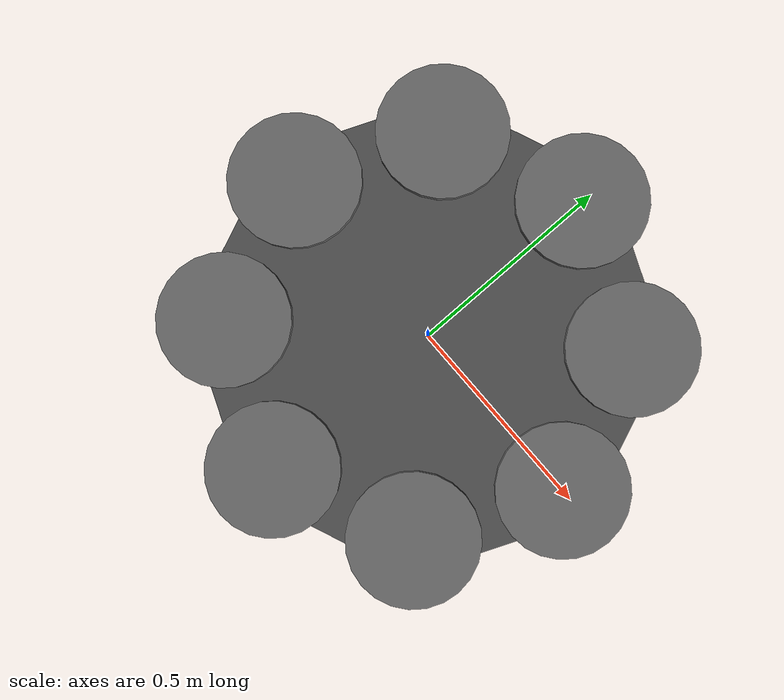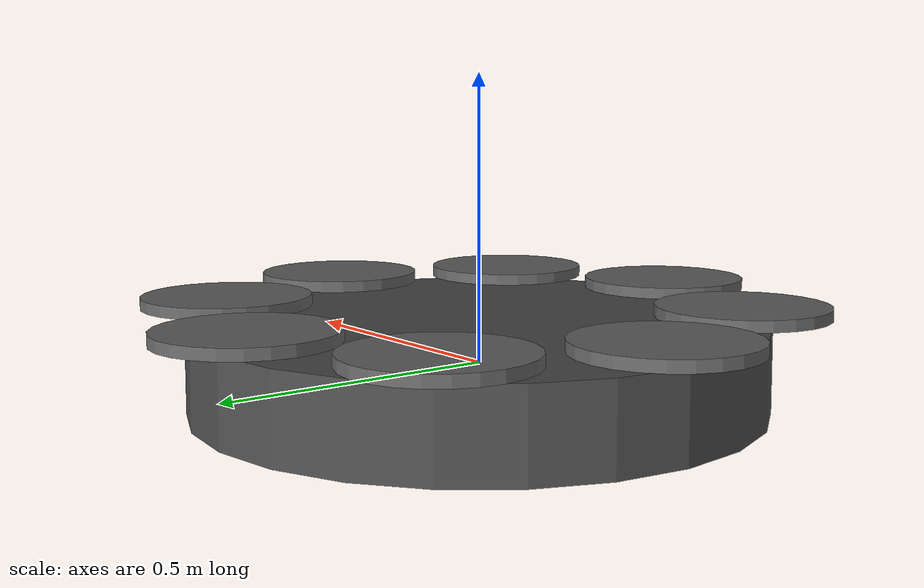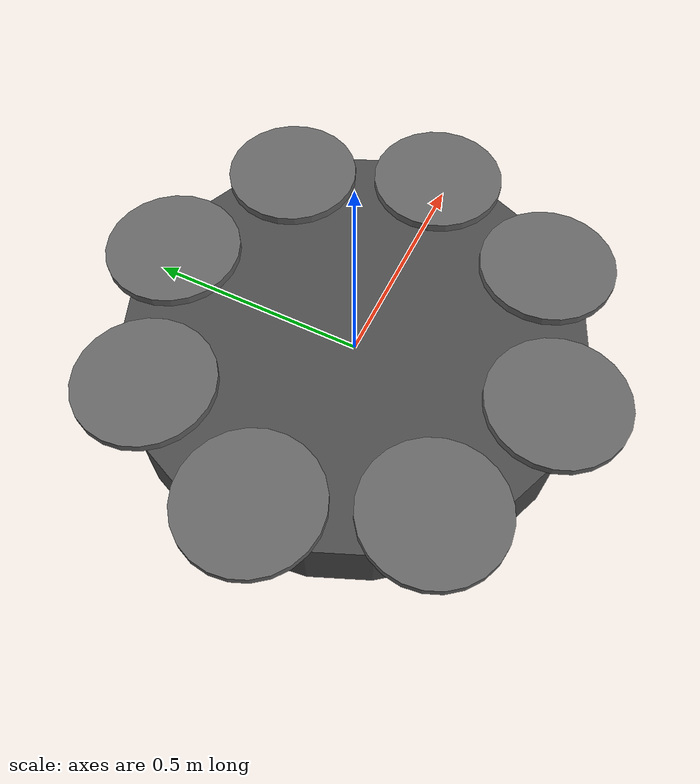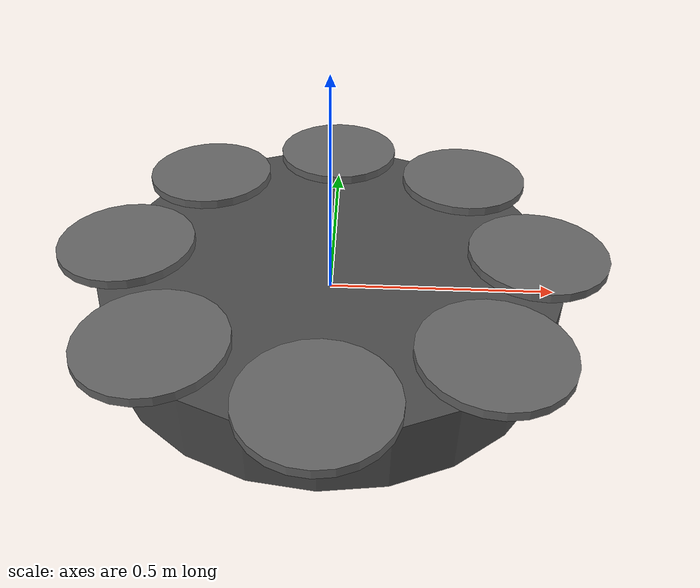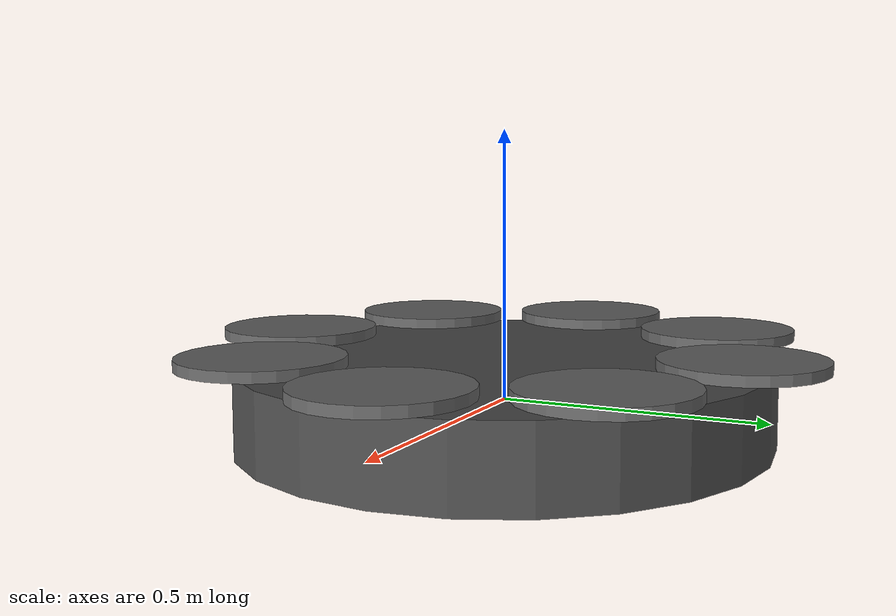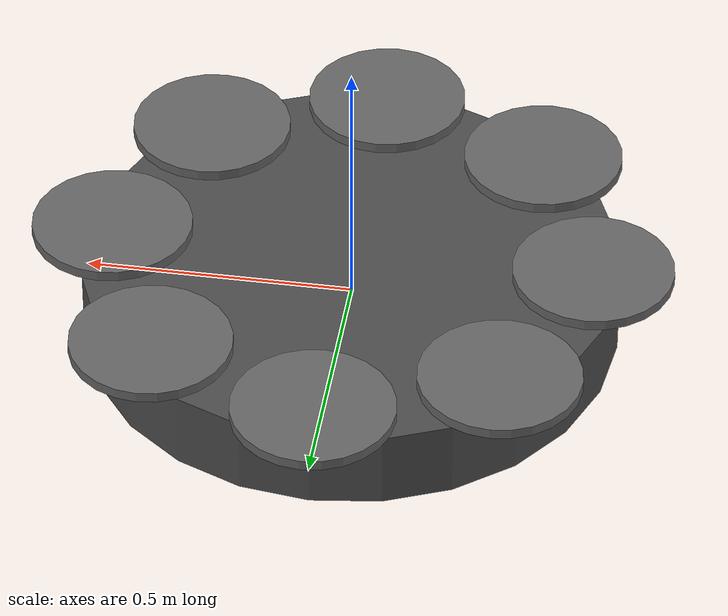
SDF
<?xml version="1.0"?>
<sdf version="1.9">
  <model name="dronehunter_f700">
    <pose>0 0 0 0 0 0</pose>

    <!-- Velocity-controlled body, gz-sim-velocity-control-system applies cmd_vel -->
    <plugin filename="gz-sim-velocity-control-system" name="gz::sim::systems::VelocityControl"/>

    <!-- 3D odometry publisher with explicit dimensions=3 -->
    <plugin filename="gz-sim-odometry-publisher-system"
            name="gz::sim::systems::OdometryPublisher">
      <odom_publish_frequency>50</odom_publish_frequency>
      <dimensions>3</dimensions>
    </plugin>

    <link name="body">
      <inertial>
        <mass>18.0</mass>
        <!-- Disc shape: r=0.5, h=0.15, m=18:
             ixx = iyy = (1/4)·m·r² + (1/12)·m·h² = 1.16
             izz = (1/2)·m·r² = 2.25 -->
        <inertia>
          <ixx>1.16</ixx><iyy>1.16</iyy><izz>2.25</izz>
          <ixy>0.0</ixy><ixz>0.0</ixz><iyz>0.0</iyz>
        </inertia>
      </inertial>
      <collision name="body_col">
        <geometry><cylinder><radius>0.5</radius><length>0.15</length></cylinder></geometry>
      </collision>
      <visual name="body_vis">
        <geometry><cylinder><radius>0.5</radius><length>0.15</length></cylinder></geometry>
        <material><ambient>0.2 0.2 0.2 1</ambient><diffuse>0.3 0.3 0.3 1</diffuse></material>
      </visual>
      <!-- 8 rotor stubs at 45° intervals, cosmetic (no joints, no animation) -->
      <visual name="rotor_e">
        <pose>0.45 0 0.1 0 0 0</pose>
        <geometry><cylinder><radius>0.15</radius><length>0.02</length></cylinder></geometry>
        <material><diffuse>0.4 0.4 0.4 1</diffuse></material>
      </visual>
      <visual name="rotor_ne">
        <pose>0.318 0.318 0.1 0 0 0</pose>
        <geometry><cylinder><radius>0.15</radius><length>0.02</length></cylinder></geometry>
        <material><diffuse>0.4 0.4 0.4 1</diffuse></material>
      </visual>
      <visual name="rotor_n">
        <pose>0 0.45 0.1 0 0 0</pose>
        <geometry><cylinder><radius>0.15</radius><length>0.02</length></cylinder></geometry>
        <material><diffuse>0.4 0.4 0.4 1</diffuse></material>
      </visual>
      <visual name="rotor_nw">
        <pose>-0.318 0.318 0.1 0 0 0</pose>
        <geometry><cylinder><radius>0.15</radius><length>0.02</length></cylinder></geometry>
        <material><diffuse>0.4 0.4 0.4 1</diffuse></material>
      </visual>
      <visual name="rotor_w">
        <pose>-0.45 0 0.1 0 0 0</pose>
        <geometry><cylinder><radius>0.15</radius><length>0.02</length></cylinder></geometry>
        <material><diffuse>0.4 0.4 0.4 1</diffuse></material>
      </visual>
      <visual name="rotor_sw">
        <pose>-0.318 -0.318 0.1 0 0 0</pose>
        <geometry><cylinder><radius>0.15</radius><length>0.02</length></cylinder></geometry>
        <material><diffuse>0.4 0.4 0.4 1</diffuse></material>
      </visual>
      <visual name="rotor_s">
        <pose>0 -0.45 0.1 0 0 0</pose>
        <geometry><cylinder><radius>0.15</radius><length>0.02</length></cylinder></geometry>
        <material><diffuse>0.4 0.4 0.4 1</diffuse></material>
      </visual>
      <visual name="rotor_se">
        <pose>0.318 -0.318 0.1 0 0 0</pose>
        <geometry><cylinder><radius>0.15</radius><length>0.02</length></cylinder></geometry>
        <material><diffuse>0.4 0.4 0.4 1</diffuse></material>
      </visual>
    </link>
  </model>
</sdf>
